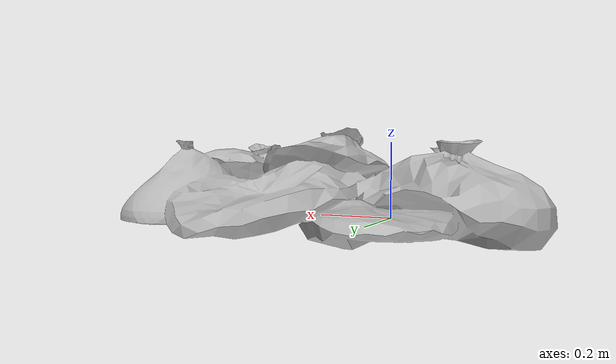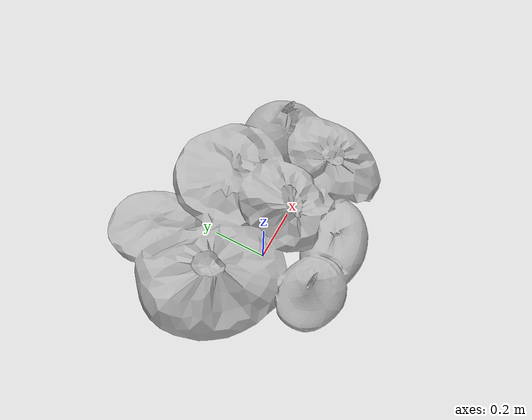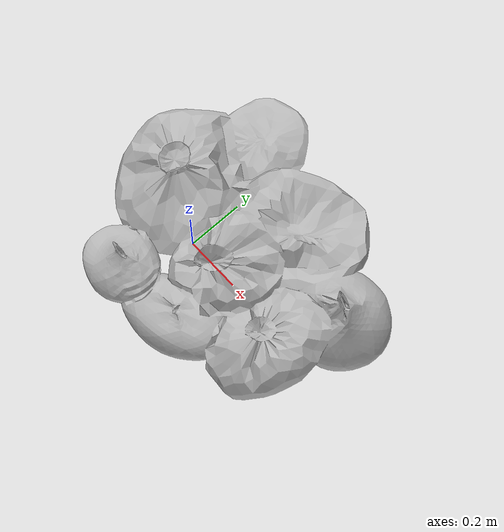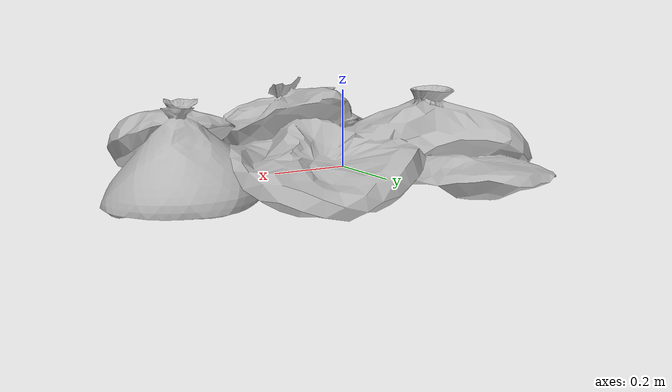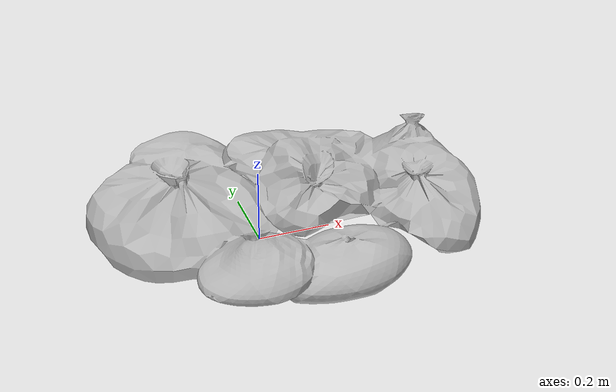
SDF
<sdf version="1.6">
  <model name="GarbagePileV2">
   <static>true</static>
    <link name="body">
      <pose>0 0 0 0 0 0</pose>

      <visual name="visual">
        <geometry>
          <mesh>
            <uri>model://GarbagePileV2/meshes/bags.obj</uri>
          </mesh>
        </geometry>
      </visual>

      <collision name="collision">
        <geometry>
          <mesh>
            <uri>model://GarbagePileV2/meshes/bags.obj</uri>
          </mesh>
        </geometry>
      </collision>

    </link>
  </model>
</sdf>
